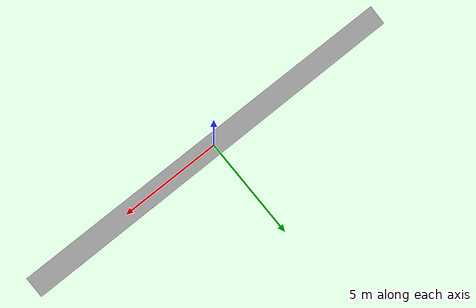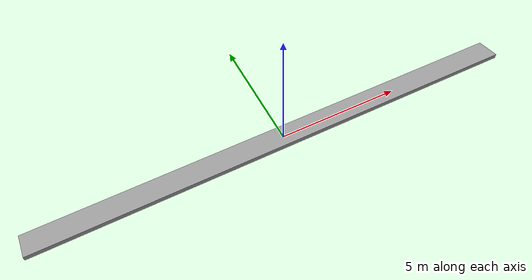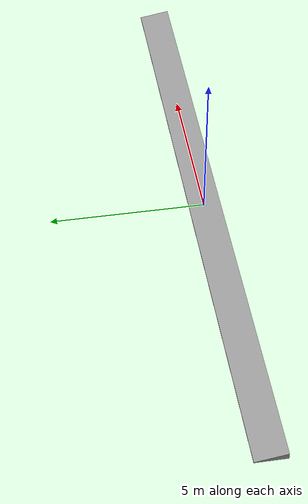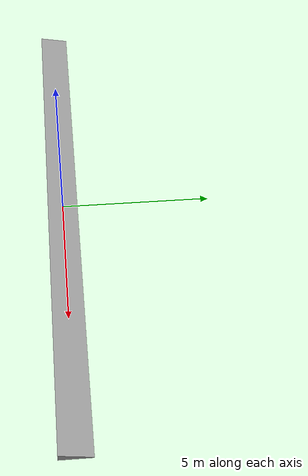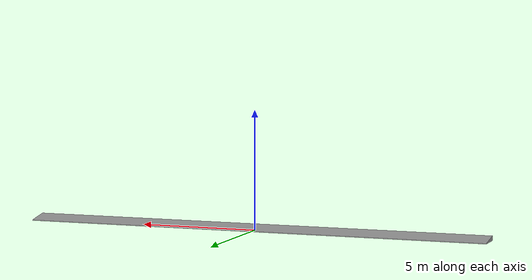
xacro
<?xml version="1.0"?>
<robot xmlns:xacro="http://www.ros.org/wiki/xacro" name="dummy">

    <xacro:include filename="inertial_macros.xacro"/>

    <link name="world"/>

    <link name="solarcell">
        <visual>
            <geometry>
                <mesh filename = "file:///$(find lidar_description)/meshes/solarcell.STL" scale = "0.01 0.01 0.01"/>
            </geometry>
            <origin rpy="0 0 0" xyz="0 0 0"/>
        </visual>
        <collision>
            <geometry>
                <mesh filename = "file:///$(find lidar_description)/meshes/solarcell.STL" scale = "0.01 0.01 0.01"/>
            </geometry>
            <origin rpy="0 0 0" xyz="0 0 0"/>
        </collision>
        <xacro:inertial_box mass="10.5" x="1.0" y="0.1" z="20.0">
            <origin xyz="0.5 0.05 10" rpy="0 0 0"/>
        </xacro:inertial_box>
    </link>

    <joint type="fixed" name="base">
        <parent link="world"/>
        <child link="solarcell"/>
        <origin rpy = "1.5707 0 -1.5707" xyz = "10 0.5 0"/>
    </joint>

    <gazebo reference="solarcell">
        <mu1>0.2</mu1>
        <mu2>0.2</mu2>
        <material>Gazebo/Gray</material>
    </gazebo>

</robot>

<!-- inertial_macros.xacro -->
<robot xmlns:xacro="http://www.ros.org/wiki/xacro" >

    <!-- Specify some standard inertial calculations https://en.wikipedia.org/wiki/List_of_moments_of_inertia -->
    <!-- These make use of xacro's mathematical functionality -->

    <xacro:macro name="inertial_sphere" params="mass radius *origin">
        <inertial>
            <xacro:insert_block name="origin"/>
            <mass value="${mass}" />
            <inertia ixx="${(2/5) * mass * (radius*radius)}" ixy="0.0" ixz="0.0"
                    iyy="${(2/5) * mass * (radius*radius)}" iyz="0.0"
                    izz="${(2/5) * mass * (radius*radius)}" />
        </inertial>
    </xacro:macro>

    <xacro:macro name="inertial_box" params="mass x y z *origin">
        <inertial>
            <xacro:insert_block name="origin"/>
            <mass value="${mass}" />
            <inertia ixx="${(1/12) * mass * (y*y+z*z)}" ixy="0.0" ixz="0.0"
                    iyy="${(1/12) * mass * (x*x+z*z)}" iyz="0.0"
                    izz="${(1/12) * mass * (x*x+y*y)}" />
        </inertial>
    </xacro:macro>

    <xacro:macro name="inertial_cylinder" params="mass length radius *origin">

        <inertial>
            <xacro:insert_block name="origin"/>
            <mass value="${mass}" />
            <inertia ixx="${(1/12) * mass * (3*radius*radius + length*length)}" ixy="0.0" ixz="0.0"
                    iyy="${(1/12) * mass * (3*radius*radius + length*length)}" iyz="0.0"
                    izz="${(1/2) * mass * (radius*radius)}" />
        </inertial>
    </xacro:macro>

</robot>
